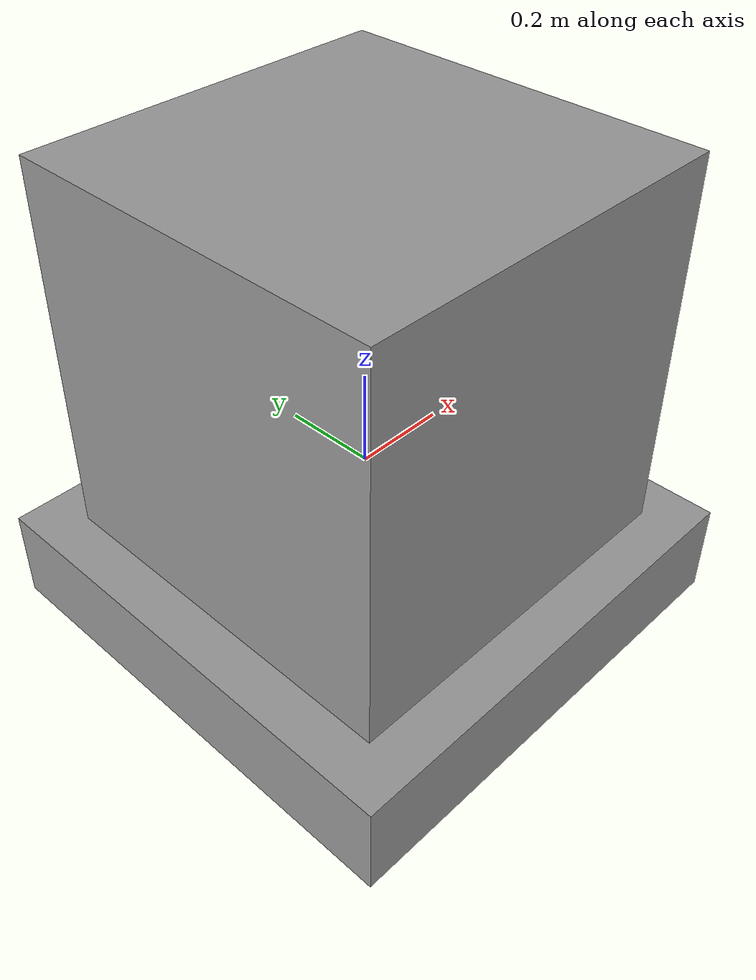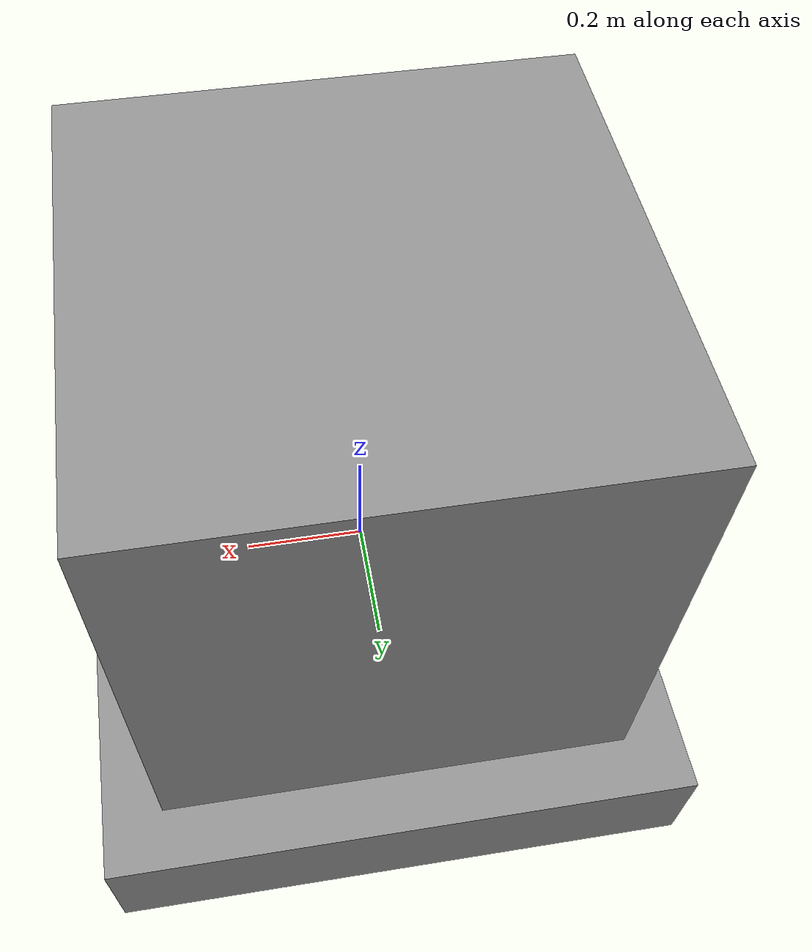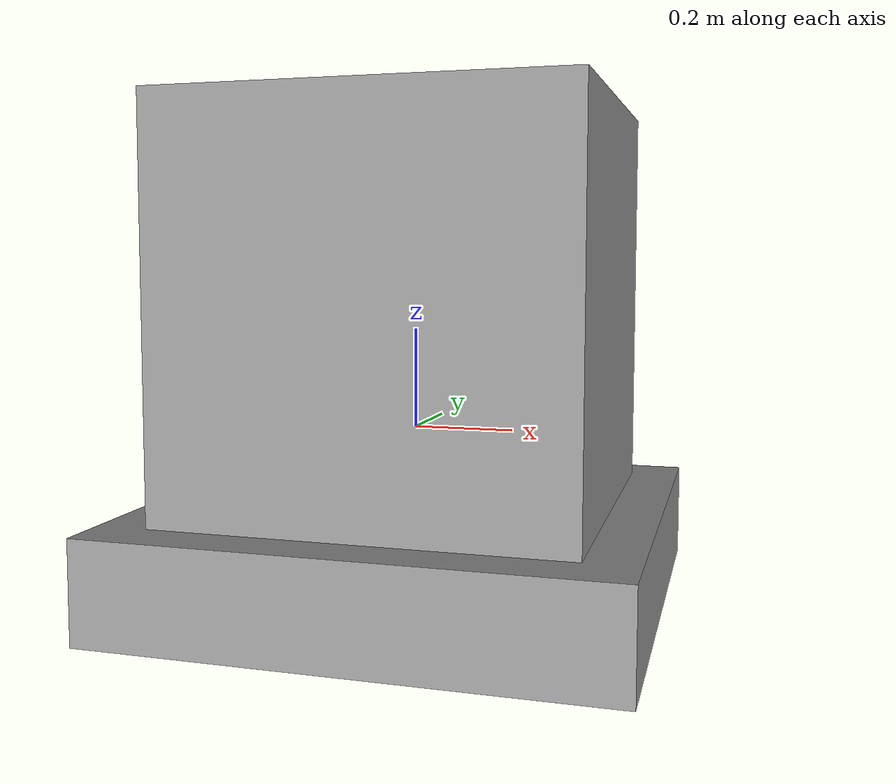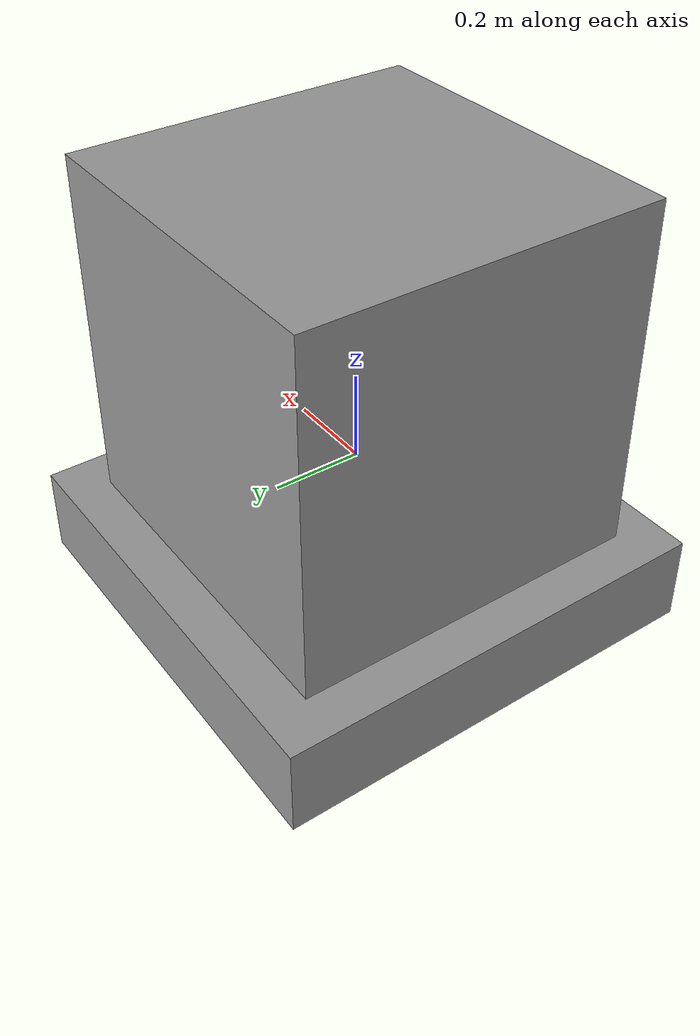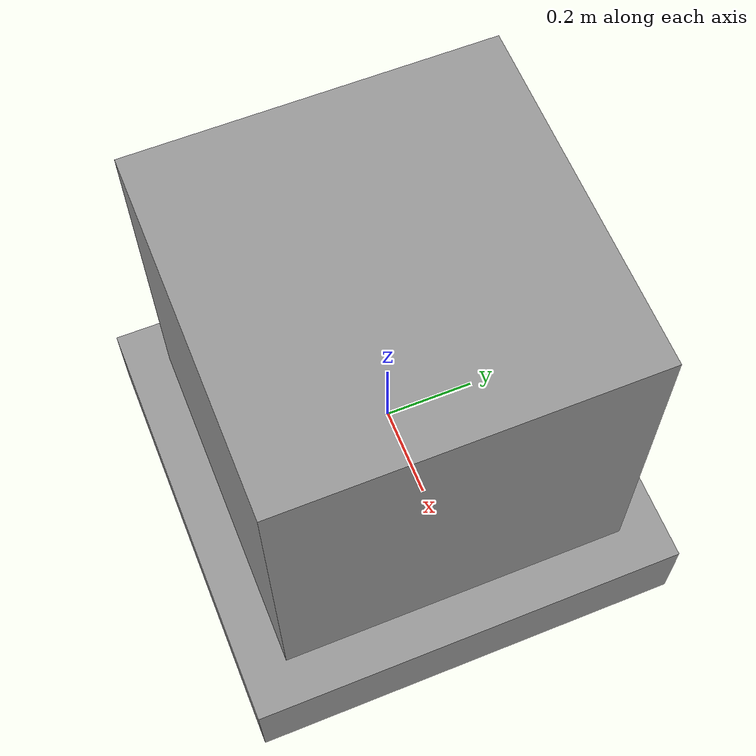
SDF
<?xml version='1.0'?>
<sdf version='1.7'>
  <model name='brick'>
    <model name='brick'>
      <link name='link_2'>
        <inertial>
          <mass>5</mass>
          <inertia>
            <ixx>0.433333</ixx>
            <ixy>0</ixy>
            <ixz>0</ixz>
            <iyy>0.433333</iyy>
            <iyz>0</iyz>
            <izz>0.833333</izz>
          </inertia>
          <pose>0 0 0 0 -0 0</pose>
        </inertial>
        <pose>0 0 -0.25 0 -0 0</pose>
        <gravity>1</gravity>
        <self_collide>0</self_collide>
        <kinematic>0</kinematic>
        <enable_wind>0</enable_wind>
        <visual name='visual'>
          <pose>0 0 0 0 -0 0</pose>
          <geometry>
            <box>
              <size>1 1 0.2</size>
            </box>
          </geometry>
          <material>
            <lighting>1</lighting>
            <script>
              <uri>file://media/materials/scripts/gazebo.material</uri>
              <name>Gazebo/Grey</name>
            </script>
            <shader type='pixel'>
              <normal_map>__default__</normal_map>
            </shader>
            <ambient>0.3 0.3 0.3 1</ambient>
            <diffuse>0.7 0.7 0.7 1</diffuse>
            <specular>0.01 0.01 0.01 1</specular>
            <emissive>0 0 0 1</emissive>
          </material>
          <transparency>0</transparency>
          <cast_shadows>1</cast_shadows>
        </visual>
        <collision name='collision'>
          <laser_retro>0</laser_retro>
          <max_contacts>10</max_contacts>
          <pose>0 0 0 0 -0 0</pose>
          <geometry>
            <box>
              <size>1 1 0.2</size>
            </box>
          </geometry>
          <surface>
            <friction>
              <ode>
                <mu>1</mu>
                <mu2>1</mu2>
                <fdir1>0 0 0</fdir1>
                <slip1>0</slip1>
                <slip2>0</slip2>
              </ode>
              <torsional>
                <coefficient>1</coefficient>
                <patch_radius>0</patch_radius>
                <surface_radius>0</surface_radius>
                <use_patch_radius>1</use_patch_radius>
                <ode>
                  <slip>0</slip>
                </ode>
              </torsional>
            </friction>
            <bounce>
              <restitution_coefficient>0</restitution_coefficient>
              <threshold>1e+06</threshold>
            </bounce>
            <contact>
              <collide_without_contact>0</collide_without_contact>
              <collide_without_contact_bitmask>1</collide_without_contact_bitmask>
              <collide_bitmask>1</collide_bitmask>
              <ode>
                <soft_cfm>0</soft_cfm>
                <soft_erp>0.2</soft_erp>
                <kp>1e+13</kp>
                <kd>1</kd>
                <max_vel>0.01</max_vel>
                <min_depth>0</min_depth>
              </ode>
              <bullet>
                <split_impulse>1</split_impulse>
                <split_impulse_penetration_threshold>-0.01</split_impulse_penetration_threshold>
                <soft_cfm>0</soft_cfm>
                <soft_erp>0.2</soft_erp>
                <kp>1e+13</kp>
                <kd>1</kd>
              </bullet>
            </contact>
          </surface>
        </collision>
      </link>
      <link name='link_3'>
        <inertial>
          <mass>100</mass>
          <inertia>
            <ixx>10.6667</ixx>
            <ixy>0</ixy>
            <ixz>0</ixz>
            <iyy>10.6667</iyy>
            <iyz>0</iyz>
            <izz>10.6667</izz>
          </inertia>
          <pose>0 0 0 0 -0 0</pose>
        </inertial>
        <pose>0 0 0.25 0 -0 0</pose>
        <gravity>1</gravity>
        <self_collide>0</self_collide>
        <kinematic>0</kinematic>
        <enable_wind>0</enable_wind>
        <visual name='visual'>
          <pose>0 0 0 0 -0 0</pose>
          <geometry>
            <box>
              <size>0.8 0.8 0.8</size>
            </box>
          </geometry>
          <material>
            <lighting>1</lighting>
            <script>
              <uri>file://media/materials/scripts/gazebo.material</uri>
              <name>Gazebo/Grey</name>
            </script>
            <shader type='pixel'>
              <normal_map>__default__</normal_map>
            </shader>
            <ambient>0.3 0.3 0.3 1</ambient>
            <diffuse>0.7 0.7 0.7 1</diffuse>
            <specular>0.01 0.01 0.01 1</specular>
            <emissive>0 0 0 1</emissive>
          </material>
          <transparency>0</transparency>
          <cast_shadows>1</cast_shadows>
        </visual>
        <collision name='collision'>
          <laser_retro>0</laser_retro>
          <max_contacts>10</max_contacts>
          <pose>0 0 0 0 -0 0</pose>
          <geometry>
            <box>
              <size>0.8 0.8 0.8</size>
            </box>
          </geometry>
          <surface>
            <friction>
              <ode>
                <mu>1</mu>
                <mu2>1</mu2>
                <fdir1>0 0 0</fdir1>
                <slip1>0</slip1>
                <slip2>0</slip2>
              </ode>
              <torsional>
                <coefficient>1</coefficient>
                <patch_radius>0</patch_radius>
                <surface_radius>0</surface_radius>
                <use_patch_radius>1</use_patch_radius>
                <ode>
                  <slip>0</slip>
                </ode>
              </torsional>
            </friction>
            <bounce>
              <restitution_coefficient>0</restitution_coefficient>
              <threshold>1e+06</threshold>
            </bounce>
            <contact>
              <collide_without_contact>0</collide_without_contact>
              <collide_without_contact_bitmask>1</collide_without_contact_bitmask>
              <collide_bitmask>1</collide_bitmask>
              <ode>
                <soft_cfm>0</soft_cfm>
                <soft_erp>0.2</soft_erp>
                <kp>1e+13</kp>
                <kd>1</kd>
                <max_vel>0.01</max_vel>
                <min_depth>0</min_depth>
              </ode>
              <bullet>
                <split_impulse>1</split_impulse>
                <split_impulse_penetration_threshold>-0.01</split_impulse_penetration_threshold>
                <soft_cfm>0</soft_cfm>
                <soft_erp>0.2</soft_erp>
                <kp>1e+13</kp>
                <kd>1</kd>
              </bullet>
            </contact>
          </surface>
        </collision>
      </link>
      <joint name='link_2_JOINT_1' type='fixed'>
        <parent>link_2</parent>
        <child>link_3</child>
        <pose>0 0 0 0 -0 0</pose>
        <physics>
          <ode>
            <limit>
              <cfm>0</cfm>
              <erp>0.2</erp>
            </limit>
            <suspension>
              <cfm>0</cfm>
              <erp>0.2</erp>
            </suspension>
          </ode>
        </physics>
      </joint>
      <static>0</static>
      <allow_auto_disable>1</allow_auto_disable>
      <pose>-0 0 0 0 -0 0</pose>
    </model>
    <static>0</static>
    <allow_auto_disable>1</allow_auto_disable>
  </model>
</sdf>
